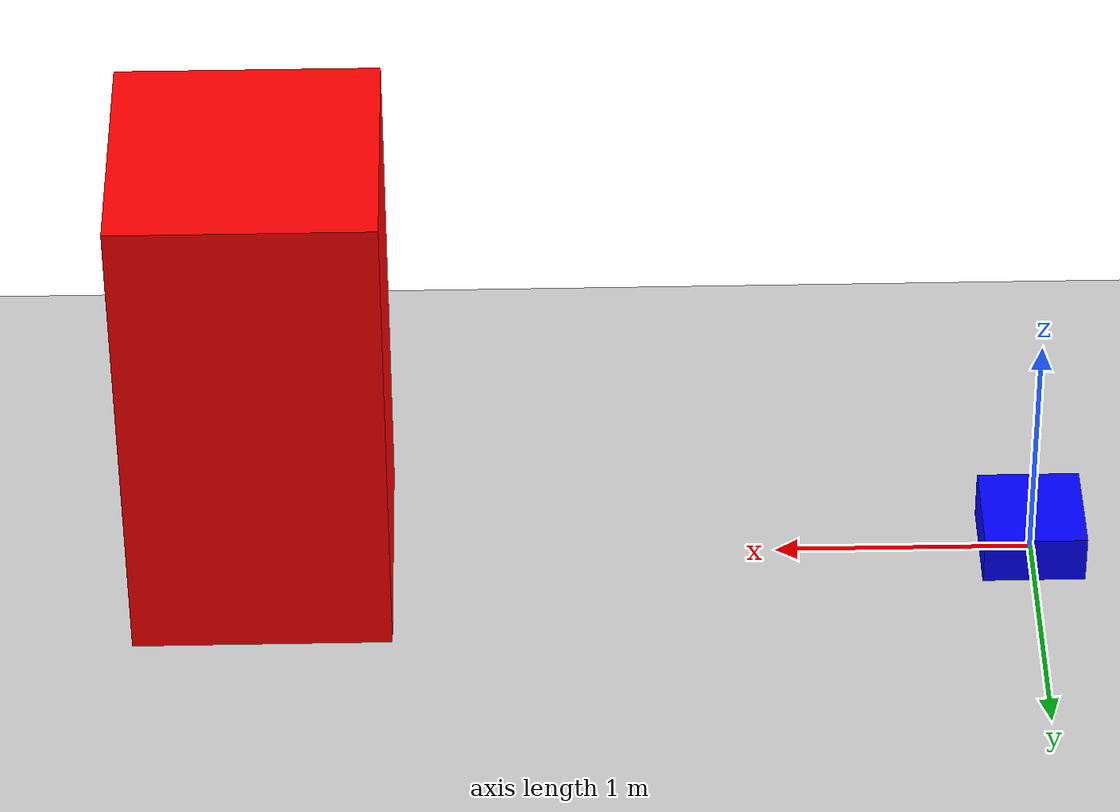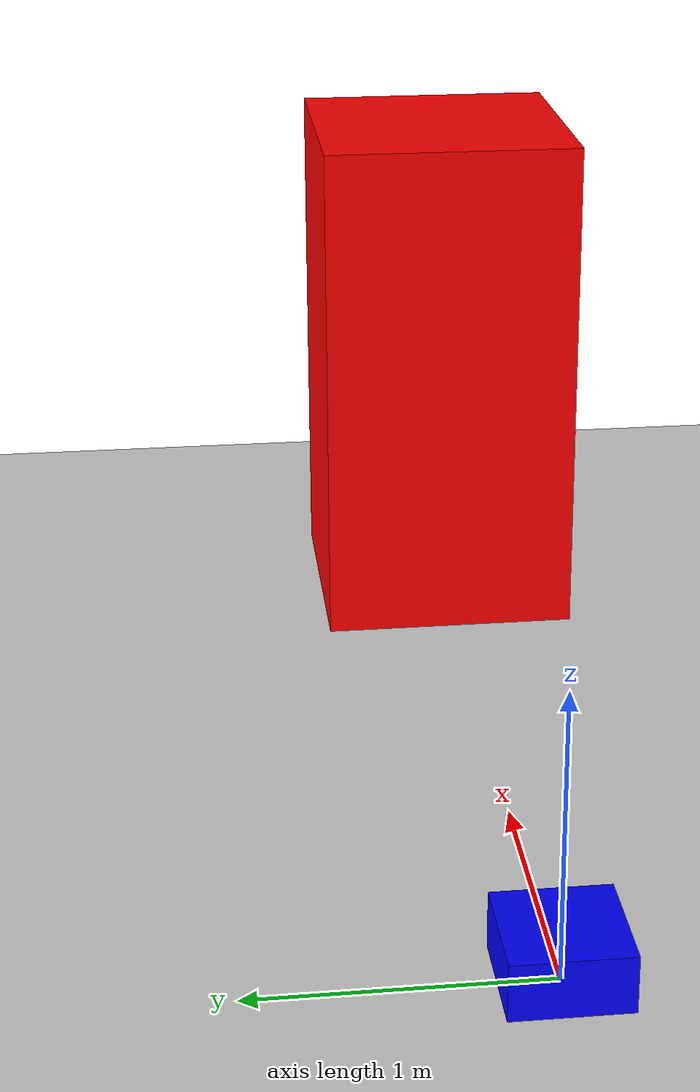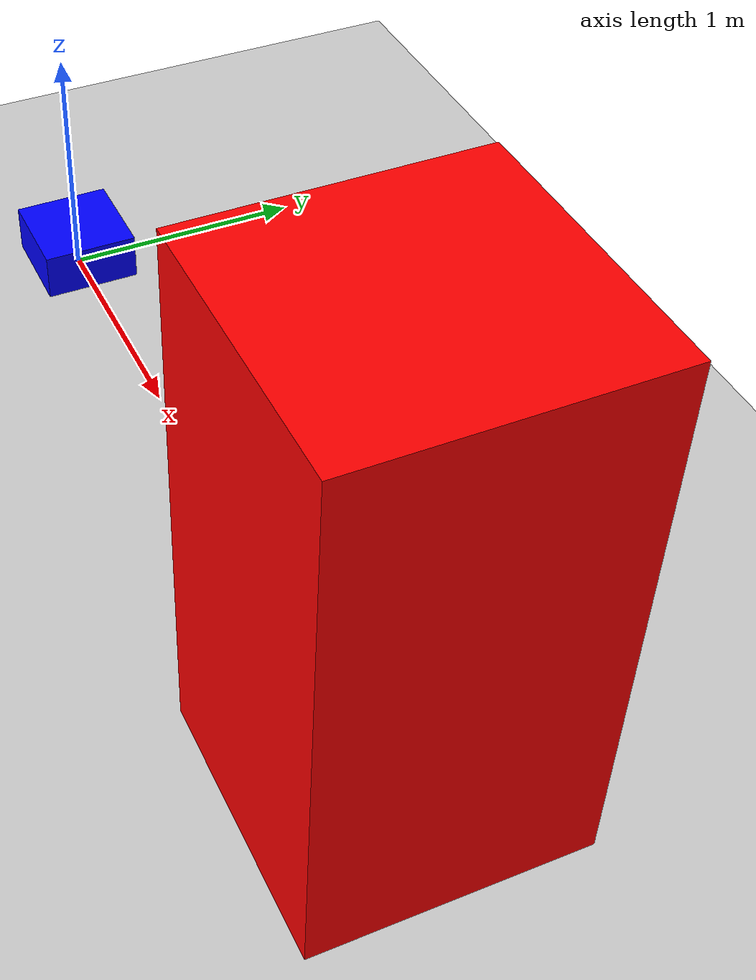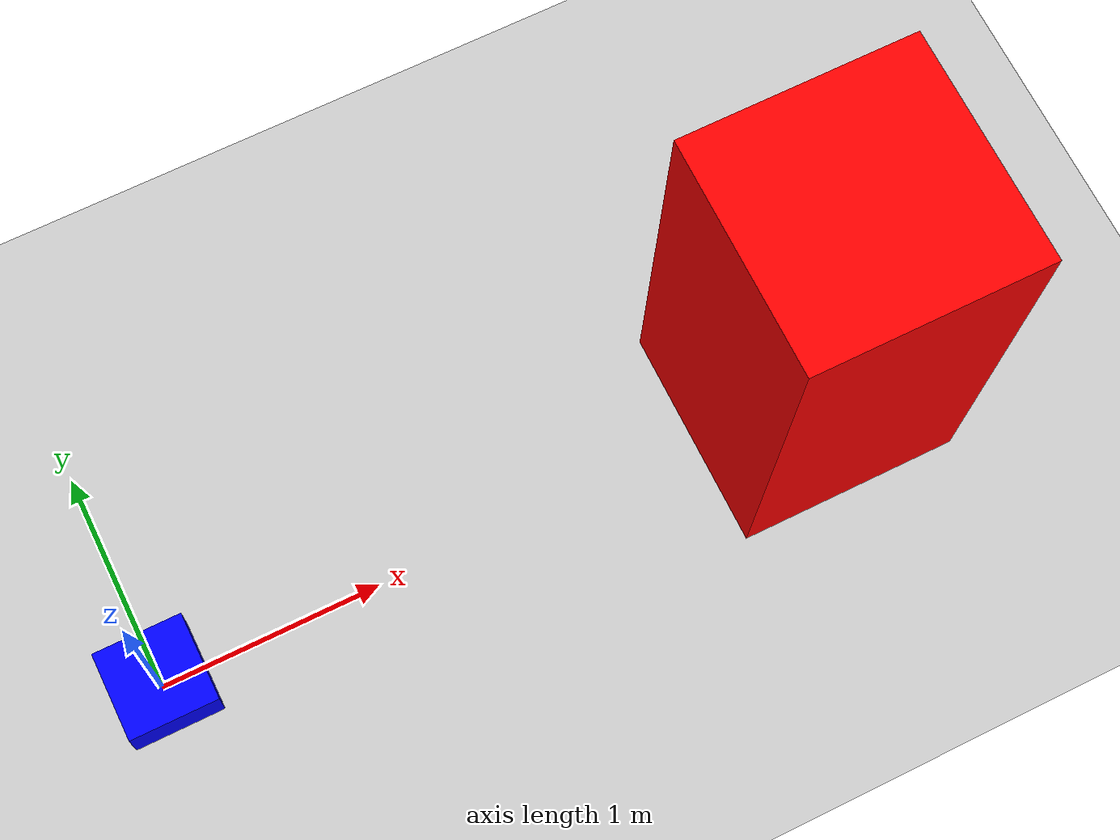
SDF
<?xml version="1.0"?>
<sdf version="1.9">
  <world name="simple_lidar_world">
    <gravity>0 0 -9.8</gravity>

    <!-- Physics plugin -->
    <plugin filename="gz-sim-physics-system" name="gz::sim::systems::Physics">
    </plugin>

    <!-- Scene manager plugin -->
    <plugin filename="gz-sim-scene-broadcaster-system" name="gz::sim::systems::SceneBroadcaster">
    </plugin>

    <!-- Sensors plugin -->
    <plugin filename="gz-sim-sensors-system" name="gz::sim::systems::Sensors">
    </plugin>

    <!-- User commands -->
    <plugin filename="gz-sim-user-commands-system" name="gz::sim::systems::UserCommands">
    </plugin>

    <!-- Simple lighting -->
    <light name="sun" type="directional">
      <pose>0 0 10 0 0 0</pose>
      <diffuse>1 1 1 1</diffuse>
      <direction>-0.5 0.1 -0.9</direction>
    </light>

    <!-- Ground plane -->
    <model name="ground_plane">
      <static>true</static>
      <pose>0 0 0 0 0 0</pose>
      <link name="link">
        <collision name="collision">
          <geometry>
            <plane>
              <normal>0 0 1</normal>
              <size>50 50</size>
            </plane>
          </geometry>
        </collision>
        <visual name="visual">
          <geometry>
            <plane>
              <normal>0 0 1</normal>
              <size>50 50</size>
            </plane>
          </geometry>
        </visual>
      </link>
    </model>

    <!-- Target box to scan -->
    <model name="box_target">
      <pose>3 0 1 0 0 0</pose>
      <static>true</static>
      <link name="link">
        <visual name="visual">
          <geometry>
            <box>
              <size>1 1 2</size>
            </box>
          </geometry>
          <material>
            <diffuse>1 0 0 1</diffuse>
          </material>
        </visual>
        <collision name="collision">
          <geometry>
            <box>
              <size>1 1 2</size>
            </box>
          </geometry>
        </collision>
      </link>
    </model>

    <!-- Include the lidar bot model -->
    <include>
      <name>lidar_bot</name>
      <uri>file:///home/leonciao/lidar_ws/src/lidar_ign_demo/models/lidar_bot</uri>
      <pose>0 0 0.1 0 0 0</pose>
    </include>

  </world>
</sdf>

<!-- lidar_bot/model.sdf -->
<sdf version="1.9">
  <model name="lidar_bot">
    <pose>0 0 0 0 0 0</pose>

    <!-- Simple base link -->
    <link name="base_link">
      <inertial>
        <mass>1.0</mass>
        <inertia>
          <ixx>0.1</ixx>
          <iyy>0.1</iyy>
          <izz>0.1</izz>
        </inertia>
      </inertial>

      <!-- Just a small box so you can see it -->
      <visual name="base_visual">
        <geometry>
          <box>
            <size>0.4 0.4 0.2</size>
          </box>
        </geometry>
        <material>
          <diffuse>0 0 1 1</diffuse>
        </material>
      </visual>

      <collision name="base_collision">
        <geometry>
          <box>
            <size>0.4 0.4 0.2</size>
          </box>
        </geometry>
      </collision>

      <!-- Simple 2D lidar sensor (more stable than 3D) -->
      <sensor name="lidar" type="ray">
        <pose>0 0 0.15 0 0 0</pose>
        <update_rate>10</update_rate>
        <always_on>1</always_on>
        <visualize>true</visualize>

        <ray>
          <scan>
            <horizontal>
              <samples>360</samples>
              <resolution>1</resolution>
              <min_angle>-3.14159</min_angle>
              <max_angle>3.14159</max_angle>
            </horizontal>
          </scan>
          <range>
            <min>0.1</min>
            <max>30.0</max>
            <resolution>0.01</resolution>
          </range>
        </ray>
      </sensor>
    </link>
  </model>
</sdf>
